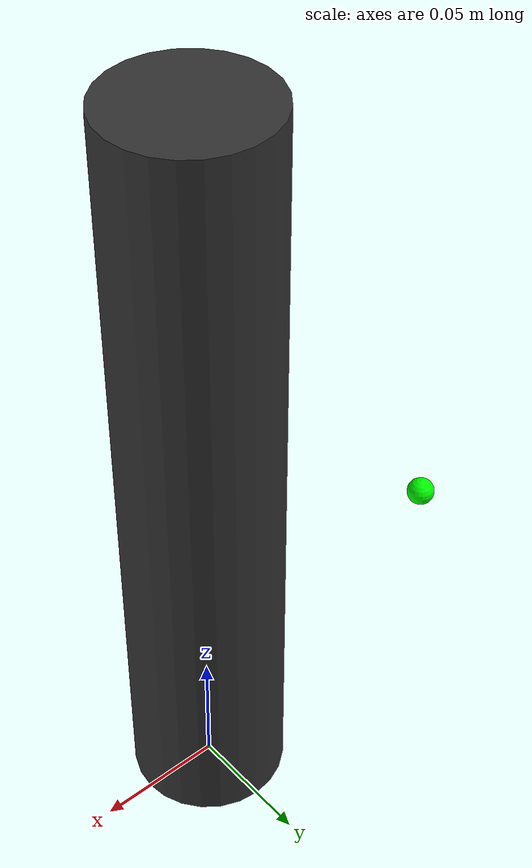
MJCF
<mujoco model="cylinder_1">
  <worldbody>
    <body name="body_cylinder_1" pos="0 0 0">
      <freejoint/>
      <geom name="geom_cylinder_1" type="cylinder" size="0.03 0.15" pos="0 0 0.15" rgba="0.2 0.2 0.2 0.95"/>
      <inertial pos="0 0 0" mass="1" diaginertia="0.5 0.5 0.5"/>

      <!-- right hand tesollo -->
      <site name="p_palm_trgt" pos="-0.07 -0.07  0.13" rgba="0 1 0 1" />
      <site name="p_palm_top_trgt" pos="-0.07 -0.07  0.23" rgba="0 1 0 1"/>
      <site name="p_gcp_trgt" pos="-0.07 0.03886518  0.13" rgba="0 1 0 1"/>
      <!-- left hand inspire -->
    </body>
  </worldbody>
</mujoco>
